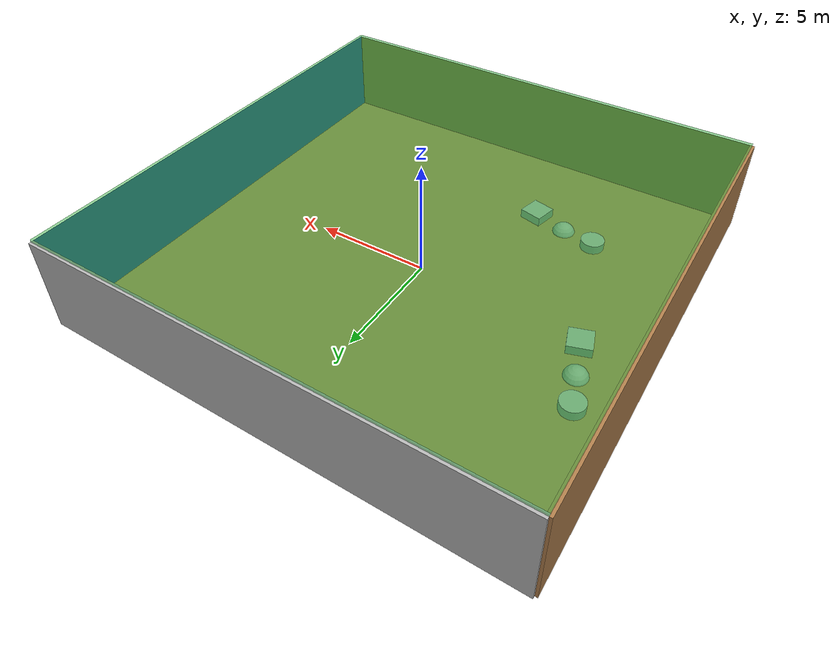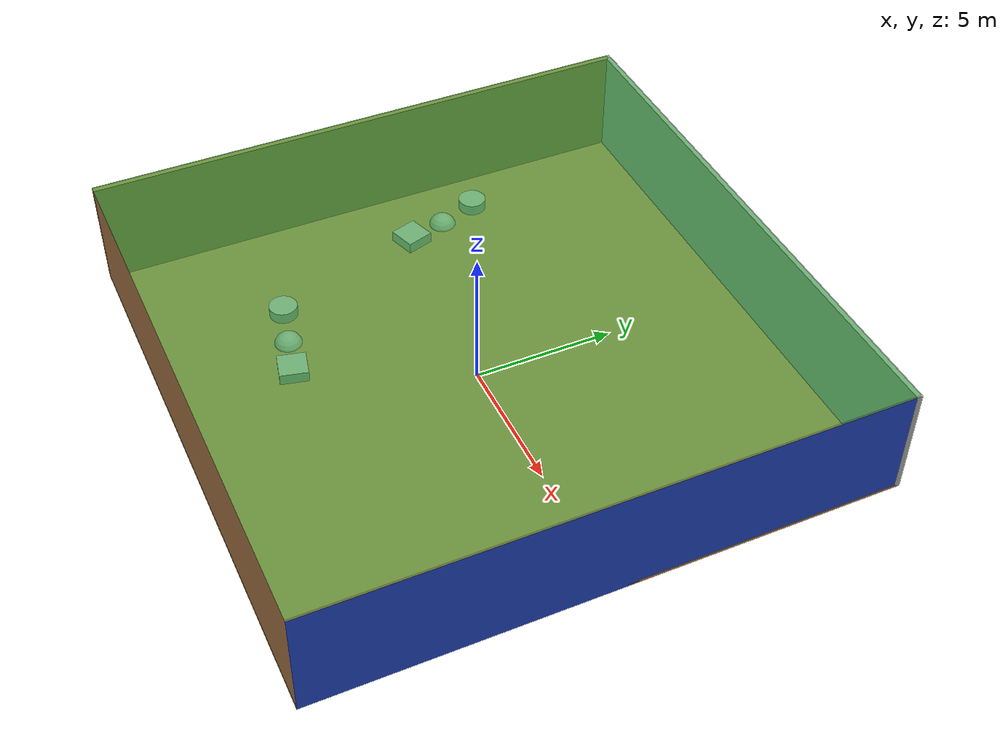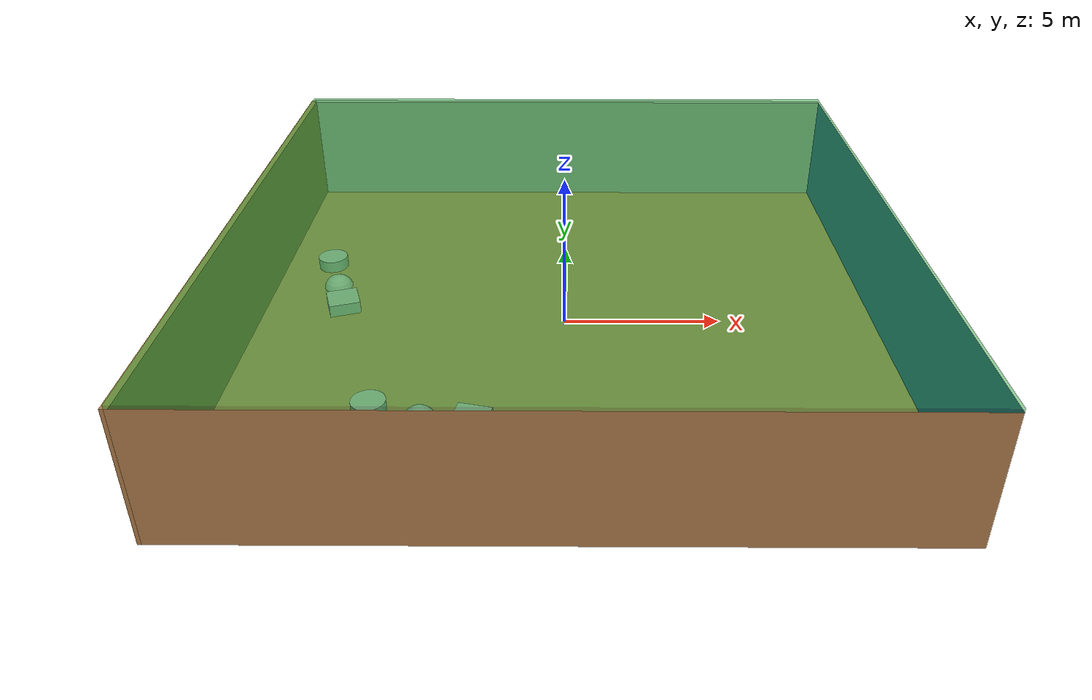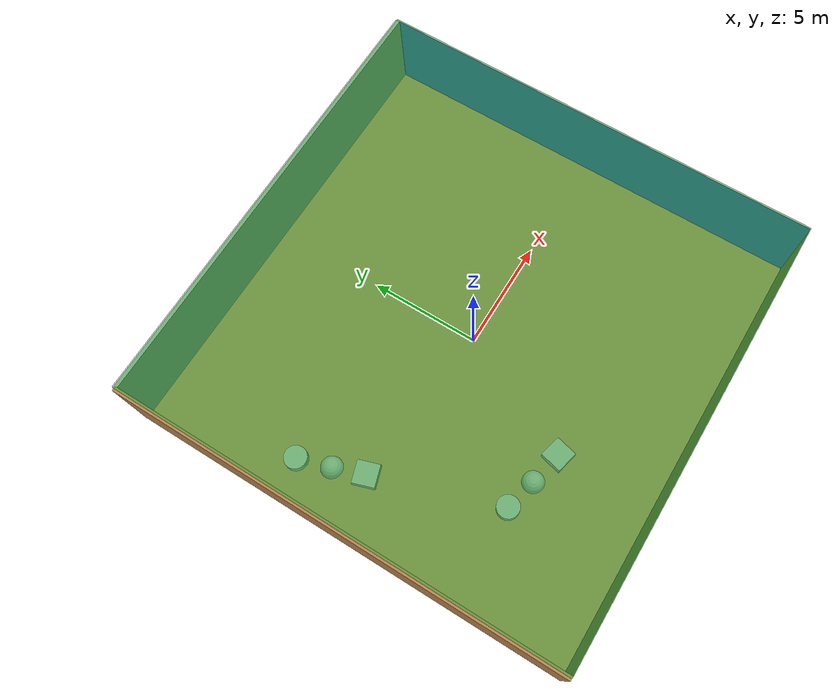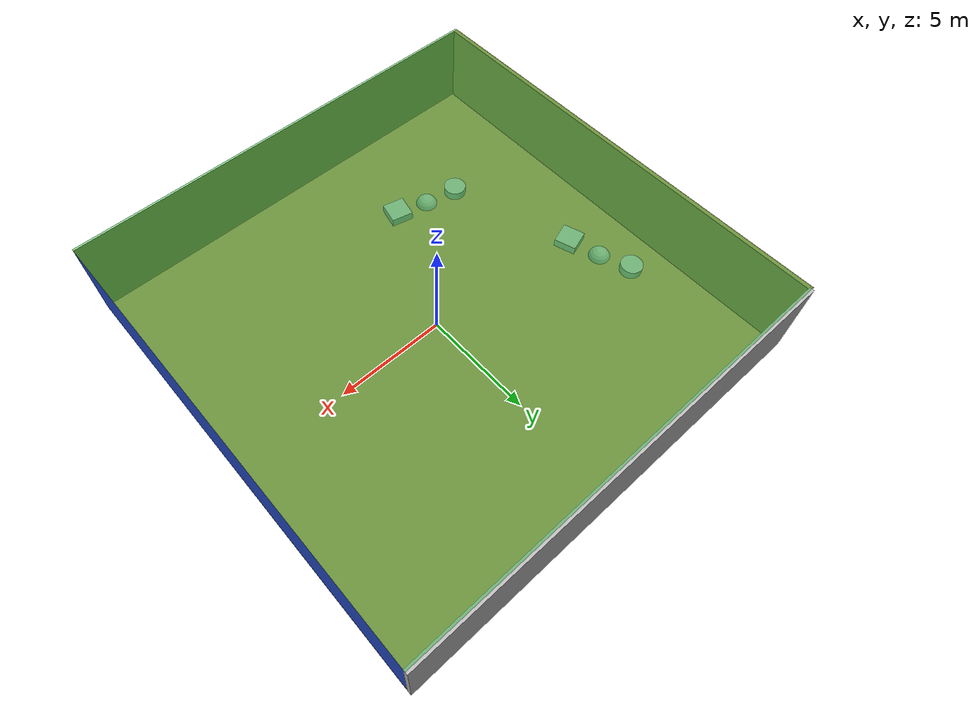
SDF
<sdf version="1.4">
 <world name="default">
  <physics type="ode">
   <max_step_size>0.001</max_step_size>
   <real_time_factor>1</real_time_factor>
   <real_time_update_rate>1000</real_time_update_rate>
   <gravity>0 0 -9.8</gravity>
  </physics>
  <scene><ambient>0.4 0.4 0.4 1</ambient><background>0.7 0.7 0.7 1</background><shadows>1</shadows></scene>
  <model name="Surrounding">
   <static>1</static>
   <link name="Ceiling">
    <collision name="Ceiling_Collision"><geometry><box><size>20 20 0.1</size></box></geometry></collision>
    <visual name="Ceiling_Visual">
     <geometry><box><size>20 20 0.1</size></box></geometry>
     <material>
      <script><uri>file://media/materials/scripts/gazebo.material</uri><name>Gazebo/GreenTransparent</name></script>
     </material>
    </visual>
    <pose>0 0 4.05 0 0 0</pose>
   </link>
   <link name="Wall_South">
    <collision name="Wall_South_Collision">
     <geometry><box><size>20 0 4</size></box></geometry>
     <pose>0 0 2 0 -0 0</pose>
    </collision>
    <visual name="Wall_South_Visual">
     <pose>0 0 2 0 -0 0</pose>
     <geometry><box><size>20 0 4</size></box></geometry>
     <material>
      <script><uri>file://media/materials/scripts/gazebo.material</uri><name>Gazebo/Wood</name></script>
     </material>
    </visual>
    <velocity_decay><linear>0</linear><angular>0</angular></velocity_decay>
    <pose>0 -10 0 0 -0 0</pose>
   </link>
   <link name="Wall_East">
    <collision name="Wall_21_Collision">
     <geometry><box><size>20 0 4</size></box></geometry>
     <pose>0 0 2 0 -0 0</pose>
    </collision>
    <visual name="Wall_21_Visual">
     <pose>0 0 2 0 -0 0</pose>
     <geometry><box><size>20 0 4</size></box></geometry>
     <material>
      <script><uri>file://media/materials/scripts/gazebo.material</uri><name>Gazebo/BlueLaser</name></script>
     </material>
    </visual>
    <velocity_decay><linear>0</linear><angular>0</angular></velocity_decay>
    <pose>10 0 0 0 -0 1.5708</pose>
   </link>
   <link name="Wall_North">
    <collision name="Wall_22_Collision">
     <geometry><box><size>20 0.2 4</size></box></geometry>
     <pose>0 0 2 0 -0 0</pose>
    </collision>
    <visual name="Wall_22_Visual">
     <pose>0 0 2 0 -0 0</pose>
     <geometry><box><size>20 0.2 4</size></box></geometry>
     <material>
      <script><uri>file://media/materials/scripts/gazebo.material</uri><name>Gazebo/PioneerBody</name></script>
     </material>
    </visual>
    <velocity_decay><linear>0</linear><angular>0</angular></velocity_decay>
    <pose>0 10 0 0 -0 0</pose>
   </link>
   <link name="Wall_West">
    <collision name="Wall_23_Collision">
     <geometry><box><size>20 0.2 4</size></box></geometry>
     <pose>0 0 2 0 -0 0</pose>
    </collision>
    <visual name="Wall_23_Visual">
     <pose>0 0 2 0 -0 0</pose>
     <geometry><box><size>20 0.2 4</size></box></geometry>
     <material>
      <script><uri>file://media/materials/scripts/gazebo.material</uri><name>Gazebo/WoodFloor</name></script>
     </material>
    </visual>
    <velocity_decay><linear>0</linear><angular>0</angular></velocity_decay>
    <pose>-10 0 0 0 0 -1.5708</pose>
   </link>
   <link name="Ground_link">
    <collision name="collision">
     <pose>0 0 .05 0 -0 0</pose>
     <geometry><box><size>20 20 0.1</size></box></geometry>
    </collision>
    <visual name="visual">
     <pose>0 0 .05 0 -0 0</pose>
     <geometry><box><size>20 20 0.1</size></box></geometry>
     <material>
      <script><uri>file://media/materials/scripts/gazebo.material</uri><name>Gazebo/WoodFloor</name></script>
     </material>
    </visual>
   </link>
   <static>1</static>
  </model>
  <spherical_coordinates>
   <surface_model>EARTH_WGS84</surface_model>
   <latitude_deg>0</latitude_deg>
   <longitude_deg>0</longitude_deg>
   <elevation>0</elevation>
   <heading_deg>0</heading_deg>
  </spherical_coordinates>
  <light name="lightball_0" type="diffuse">
   <diffuse>0.8 0.8 0.8 1</diffuse>
   <specular>0.2 0.2 0.2 1</specular>
   <attenuation>
    <range>100</range>
    <constant>0.7</constant>
    <linear>0.01</linear>
    <quadratic>0.001</quadratic>
   </attenuation>
   <direction>-0.5 0.1 -0.9</direction>
   <pose>-6.8316283322 2.86301843408 1.04587389137 0 0 0</pose>
  </light>
  <light name="lightball_1" type="diffuse">
   <diffuse>0.8 0.8 0.8 1</diffuse>
   <specular>0.2 0.2 0.2 1</specular>
   <attenuation>
    <range>100</range>
    <constant>0.7</constant>
    <linear>0.01</linear>
    <quadratic>0.001</quadratic>
   </attenuation>
   <direction>-0.5 0.1 -0.9</direction>
   <pose>-3.52427444889 7.65123712106 3.09143360651 0 0 0</pose>
  </light>
  <light name="lightball_2" type="diffuse">
   <diffuse>0.8 0.8 0.8 1</diffuse>
   <specular>0.2 0.2 0.2 1</specular>
   <attenuation>
    <range>100</range>
    <constant>0.7</constant>
    <linear>0.01</linear>
    <quadratic>0.001</quadratic>
   </attenuation>
   <direction>-0.5 0.1 -0.9</direction>
   <pose>-3.07870102546 -9.94233184931 2.15151715112 0 0 0</pose>
  </light>
  <light name="lightball_3" type="diffuse">
   <diffuse>0.8 0.8 0.8 1</diffuse>
   <specular>0.2 0.2 0.2 1</specular>
   <attenuation>
    <range>100</range>
    <constant>0.7</constant>
    <linear>0.01</linear>
    <quadratic>0.001</quadratic>
   </attenuation>
   <direction>-0.5 0.1 -0.9</direction>
   <pose>-1.96126108513 7.46380101434 3.60143792455 0 0 0</pose>
  </light>
  <light name="lightball_4" type="diffuse">
   <diffuse>0.8 0.8 0.8 1</diffuse>
   <specular>0.2 0.2 0.2 1</specular>
   <attenuation>
    <range>100</range>
    <constant>0.7</constant>
    <linear>0.01</linear>
    <quadratic>0.001</quadratic>
   </attenuation>
   <direction>-0.5 0.1 -0.9</direction>
   <pose>1.86891465675 -9.60915698295 1.05206553545 0 0 0</pose>
  </light>
  <light name="lightball_5" type="diffuse">
   <diffuse>0.8 0.8 0.8 1</diffuse>
   <specular>0.2 0.2 0.2 1</specular>
   <attenuation>
    <range>100</range>
    <constant>0.7</constant>
    <linear>0.01</linear>
    <quadratic>0.001</quadratic>
   </attenuation>
   <direction>-0.5 0.1 -0.9</direction>
   <pose>-2.97507932805 1.69989014664 0.85356811265 0 0 0</pose>
  </light>
  <light name="lightball_6" type="diffuse">
   <diffuse>0.8 0.8 0.8 1</diffuse>
   <specular>0.2 0.2 0.2 1</specular>
   <attenuation>
    <range>100</range>
    <constant>0.7</constant>
    <linear>0.01</linear>
    <quadratic>0.001</quadratic>
   </attenuation>
   <direction>-0.5 0.1 -0.9</direction>
   <pose>5.50149920033 0.741969023425 3.55110703475 0 0 0</pose>
  </light>
  <light name="lightball_7" type="diffuse">
   <diffuse>0.8 0.8 0.8 1</diffuse>
   <specular>0.2 0.2 0.2 1</specular>
   <attenuation>
    <range>100</range>
    <constant>0.7</constant>
    <linear>0.01</linear>
    <quadratic>0.001</quadratic>
   </attenuation>
   <direction>-0.5 0.1 -0.9</direction>
   <pose>-7.62599949124 -7.39290749296 3.82174299245 0 0 0</pose>
  </light>
  <light name="lightball_8" type="diffuse">
   <diffuse>0.8 0.8 0.8 1</diffuse>
   <specular>0.2 0.2 0.2 1</specular>
   <attenuation>
    <range>100</range>
    <constant>0.7</constant>
    <linear>0.01</linear>
    <quadratic>0.001</quadratic>
   </attenuation>
   <direction>-0.5 0.1 -0.9</direction>
   <pose>-6.52711767152 7.05381982029 2.55797738969 0 0 0</pose>
  </light>
  <light name="lightball_9" type="diffuse">
   <diffuse>0.8 0.8 0.8 1</diffuse>
   <specular>0.2 0.2 0.2 1</specular>
   <attenuation>
    <range>100</range>
    <constant>0.7</constant>
    <linear>0.01</linear>
    <quadratic>0.001</quadratic>
   </attenuation>
   <direction>-0.5 0.1 -0.9</direction>
   <pose>-8.58766584337 8.62028676964 0.595897986449 0 0 0</pose>
  </light>
  <light name="lightball_10" type="diffuse">
   <diffuse>0.8 0.8 0.8 1</diffuse>
   <specular>0.2 0.2 0.2 1</specular>
   <attenuation>
    <range>100</range>
    <constant>0.7</constant>
    <linear>0.01</linear>
    <quadratic>0.001</quadratic>
   </attenuation>
   <direction>-0.5 0.1 -0.9</direction>
   <pose>-8.72973843185 5.8773118392 1.86906518542 0 0 0</pose>
  </light>
  <light name="lightball_11" type="diffuse">
   <diffuse>0.8 0.8 0.8 1</diffuse>
   <specular>0.2 0.2 0.2 1</specular>
   <attenuation>
    <range>100</range>
    <constant>0.7</constant>
    <linear>0.01</linear>
    <quadratic>0.001</quadratic>
   </attenuation>
   <direction>-0.5 0.1 -0.9</direction>
   <pose>-3.40909845432 9.32977136496 2.00228986928 0 0 0</pose>
  </light>
  <light name="lightball_12" type="diffuse">
   <diffuse>0.8 0.8 0.8 1</diffuse>
   <specular>0.2 0.2 0.2 1</specular>
   <attenuation>
    <range>100</range>
    <constant>0.7</constant>
    <linear>0.01</linear>
    <quadratic>0.001</quadratic>
   </attenuation>
   <direction>-0.5 0.1 -0.9</direction>
   <pose>-1.76219035763 2.76804441077 1.71822672622 0 0 0</pose>
  </light>
  <include>
   <uri>model://textured_shapes</uri>
   <pose>-7.80724504968 2.09463795031 0 0 0 0.315273879702</pose>
  </include>
  <include>
   <uri>model://textured_shapes</uri>
   <pose>-4.03310102628 -5.30798157497 0 0 0 1.34162942465</pose>
  </include>
 </world>
</sdf>

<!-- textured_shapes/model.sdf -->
<sdf version="1.6">
  <model name="textured_shapes">
    <pose>0 0 0.5 0 0 0</pose>
    <link name="box">
      <pose>0 -1.5 0 0 0 0</pose>
      <collision name="collision">
        <geometry>
          <box>
            <size>1 1 1</size>
          </box>
        </geometry>
      </collision>
      <visual name="visual">
        <geometry>
          <box>
            <size>1 1 1</size>
          </box>
        </geometry>
        <material>
          <script>
            <uri>model://../model_source/models/textured_shapes/materials/scripts</uri>
            <uri>model://../model_source/models/textured_shapes/materials/textures</uri>
            <name>TexturedShape/Squares</name>
          </script>
        </material>
      </visual>
    </link>
    <link name="sphere">
      <collision name="collision">
        <geometry>
          <sphere>
            <radius>0.5</radius>
          </sphere>
        </geometry>
      </collision>
      <visual name="visual">
        <geometry>
          <sphere>
            <radius>0.5</radius>
          </sphere>
        </geometry>
        <material>
          <script>
            <uri>model://../model_source/models/textured_shapes/materials/scripts</uri>
            <uri>model://../model_source/models/textured_shapes/materials/textures</uri>
            <name>TexturedShape/Squares</name>
          </script>
        </material>
      </visual>
    </link>
    <link name="cylinder">
      <pose>0 1.5 0 0 0 0</pose>
      <collision name="collision">
        <geometry>
          <cylinder>
            <radius>0.5</radius>
            <length>1</length>
          </cylinder>
        </geometry>
      </collision>
      <visual name="visual">
        <geometry>
          <cylinder>
            <radius>0.5</radius>
            <length>1</length>
          </cylinder>
        </geometry>
        <material>
          <script>
            <uri>model://../model_source/models/textured_shapes/materials/scripts</uri>
            <uri>model://../model_source/models/textured_shapes/materials/textures</uri>
            <name>TexturedShape/Squares</name>
          </script>
        </material>
      </visual>
    </link>
  </model>
</sdf>
